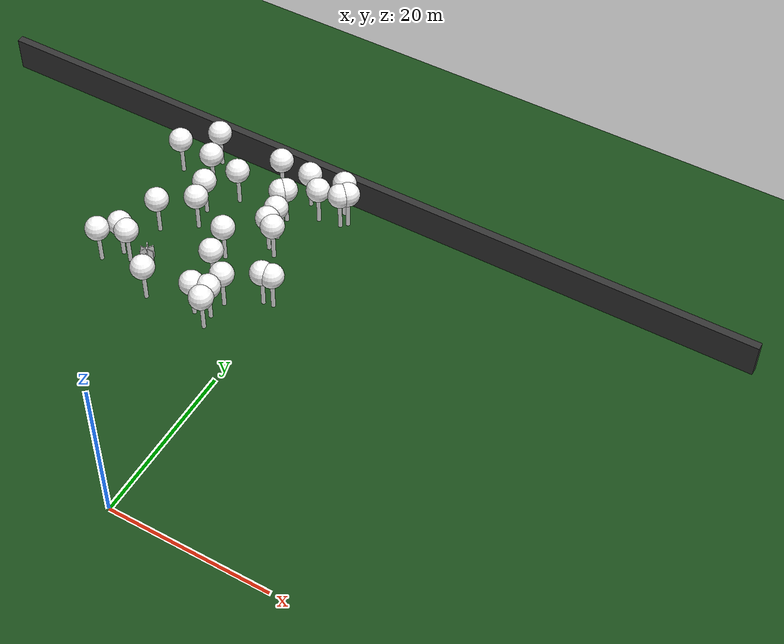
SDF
<sdf version="1.8">
 <world name="forest_world">
  <model name="tree_simple492">
   <static>1</static>
   <link name="link">
    <pose>0 0 0.1 0 -0 0</pose>
    <collision name="collision_trunk">
     <pose>0 0 2 0 -0 0</pose>
     <geometry><cylinder><radius>0.25</radius><length>4</length></cylinder></geometry>
    </collision>
    <collision name="collision_treetop">
     <pose>0 0 5.2 0 -0 0</pose>
     <geometry><sphere><radius>1.5</radius></sphere></geometry>
    </collision>
    <visual name="trunk">
     <pose>0 0 2 0 -0 0</pose>
     <geometry><cylinder><radius>0.25</radius><length>4</length></cylinder></geometry>
     <material>
      <ambient>0.5 0.5 0.5 1</ambient>
      <diffuse>1.0 1.0 1.0 1</diffuse>
      <specular>0.0 0.0 0.0 1</specular>
      <pbr>
       <metal>
        <albedo_map>../worlds/textures/tree_simple_trunk.jpg</albedo_map>
        <metalness>0.0</metalness>
        <roughness>0.8</roughness>
       </metal>
      </pbr>
     </material>
    </visual>
    <visual name="treetop">
     <pose>0 0 5.2 0 -0 0</pose>
     <geometry><sphere><radius>1.5</radius></sphere></geometry>
     <material>
      <ambient>0.5 0.5 0.5 1</ambient>
      <diffuse>1.0 1.0 1.0 1</diffuse>
      <specular>0.0 0.0 0.0 1</specular>
      <pbr>
       <metal>
        <albedo_map>../worlds/textures/tree_simple_treetop.jpg</albedo_map>
        <metalness>0.0</metalness>
        <roughness>0.9</roughness>
       </metal>
      </pbr>
     </material>
    </visual>
   </link>
   <pose>-7.60604313382 27.1336498888 0 0 -0 0</pose>
  </model>
  <model name="tree_simple483">
   <static>1</static>
   <link name="link">
    <pose>0 0 0.1 0 -0 0</pose>
    <collision name="collision_trunk">
     <pose>0 0 2 0 -0 0</pose>
     <geometry><cylinder><radius>0.25</radius><length>4</length></cylinder></geometry>
    </collision>
    <collision name="collision_treetop">
     <pose>0 0 5.2 0 -0 0</pose>
     <geometry><sphere><radius>1.5</radius></sphere></geometry>
    </collision>
    <visual name="trunk">
     <pose>0 0 2 0 -0 0</pose>
     <geometry><cylinder><radius>0.25</radius><length>4</length></cylinder></geometry>
     <material>
      <ambient>0.5 0.5 0.5 1</ambient>
      <diffuse>1.0 1.0 1.0 1</diffuse>
      <specular>0.0 0.0 0.0 1</specular>
      <pbr>
       <metal>
        <albedo_map>../worlds/textures/tree_simple_trunk.jpg</albedo_map>
        <metalness>0.0</metalness>
        <roughness>0.8</roughness>
       </metal>
      </pbr>
     </material>
    </visual>
    <visual name="treetop">
     <pose>0 0 5.2 0 -0 0</pose>
     <geometry><sphere><radius>1.5</radius></sphere></geometry>
     <material>
      <ambient>0.5 0.5 0.5 1</ambient>
      <diffuse>1.0 1.0 1.0 1</diffuse>
      <specular>0.0 0.0 0.0 1</specular>
      <pbr>
       <metal>
        <albedo_map>../worlds/textures/tree_simple_treetop.jpg</albedo_map>
        <metalness>0.0</metalness>
        <roughness>0.9</roughness>
       </metal>
      </pbr>
     </material>
    </visual>
   </link>
   <pose>-6.65162129766 44.7613363002 0 0 -0 0</pose>
  </model>
  <model name="tree_simple477">
   <static>1</static>
   <link name="link">
    <pose>0 0 0.1 0 -0 0</pose>
    <collision name="collision_trunk">
     <pose>0 0 2 0 -0 0</pose>
     <geometry><cylinder><radius>0.25</radius><length>4</length></cylinder></geometry>
    </collision>
    <collision name="collision_treetop">
     <pose>0 0 5.2 0 -0 0</pose>
     <geometry><sphere><radius>1.5</radius></sphere></geometry>
    </collision>
    <visual name="trunk">
     <pose>0 0 2 0 -0 0</pose>
     <geometry><cylinder><radius>0.25</radius><length>4</length></cylinder></geometry>
     <material>
      <ambient>0.5 0.5 0.5 1</ambient>
      <diffuse>1.0 1.0 1.0 1</diffuse>
      <specular>0.0 0.0 0.0 1</specular>
      <pbr>
       <metal>
        <albedo_map>../worlds/textures/tree_simple_trunk.jpg</albedo_map>
        <metalness>0.0</metalness>
        <roughness>0.8</roughness>
       </metal>
      </pbr>
     </material>
    </visual>
    <visual name="treetop">
     <pose>0 0 5.2 0 -0 0</pose>
     <geometry><sphere><radius>1.5</radius></sphere></geometry>
     <material>
      <ambient>0.5 0.5 0.5 1</ambient>
      <diffuse>1.0 1.0 1.0 1</diffuse>
      <specular>0.0 0.0 0.0 1</specular>
      <pbr>
       <metal>
        <albedo_map>../worlds/textures/tree_simple_treetop.jpg</albedo_map>
        <metalness>0.0</metalness>
        <roughness>0.9</roughness>
       </metal>
      </pbr>
     </material>
    </visual>
   </link>
   <pose>-0.22927085135 32.6495918535 0 0 -0 0</pose>
  </model>
  <model name="tree_simple446">
   <static>1</static>
   <link name="link">
    <pose>0 0 0.1 0 -0 0</pose>
    <collision name="collision_trunk">
     <pose>0 0 2 0 -0 0</pose>
     <geometry><cylinder><radius>0.25</radius><length>4</length></cylinder></geometry>
    </collision>
    <collision name="collision_treetop">
     <pose>0 0 5.2 0 -0 0</pose>
     <geometry><sphere><radius>1.5</radius></sphere></geometry>
    </collision>
    <visual name="trunk">
     <pose>0 0 2 0 -0 0</pose>
     <geometry><cylinder><radius>0.25</radius><length>4</length></cylinder></geometry>
     <material>
      <ambient>0.5 0.5 0.5 1</ambient>
      <diffuse>1.0 1.0 1.0 1</diffuse>
      <specular>0.0 0.0 0.0 1</specular>
      <pbr>
       <metal>
        <albedo_map>../worlds/textures/tree_simple_trunk.jpg</albedo_map>
        <metalness>0.0</metalness>
        <roughness>0.8</roughness>
       </metal>
      </pbr>
     </material>
    </visual>
    <visual name="treetop">
     <pose>0 0 5.2 0 -0 0</pose>
     <geometry><sphere><radius>1.5</radius></sphere></geometry>
     <material>
      <ambient>0.5 0.5 0.5 1</ambient>
      <diffuse>1.0 1.0 1.0 1</diffuse>
      <specular>0.0 0.0 0.0 1</specular>
      <pbr>
       <metal>
        <albedo_map>../worlds/textures/tree_simple_treetop.jpg</albedo_map>
        <metalness>0.0</metalness>
        <roughness>0.9</roughness>
       </metal>
      </pbr>
     </material>
    </visual>
   </link>
   <pose>-14.8873591434 38.8088683427 0 0 -0 0</pose>
  </model>
  <model name="tree_simple436">
   <static>1</static>
   <link name="link">
    <pose>0 0 0.1 0 -0 0</pose>
    <collision name="collision_trunk">
     <pose>0 0 2 0 -0 0</pose>
     <geometry><cylinder><radius>0.25</radius><length>4</length></cylinder></geometry>
    </collision>
    <collision name="collision_treetop">
     <pose>0 0 5.2 0 -0 0</pose>
     <geometry><sphere><radius>1.5</radius></sphere></geometry>
    </collision>
    <visual name="trunk">
     <pose>0 0 2 0 -0 0</pose>
     <geometry><cylinder><radius>0.25</radius><length>4</length></cylinder></geometry>
     <material>
      <ambient>0.5 0.5 0.5 1</ambient>
      <diffuse>1.0 1.0 1.0 1</diffuse>
      <specular>0.0 0.0 0.0 1</specular>
      <pbr>
       <metal>
        <albedo_map>../worlds/textures/tree_simple_trunk.jpg</albedo_map>
        <metalness>0.0</metalness>
        <roughness>0.8</roughness>
       </metal>
      </pbr>
     </material>
    </visual>
    <visual name="treetop">
     <pose>0 0 5.2 0 -0 0</pose>
     <geometry><sphere><radius>1.5</radius></sphere></geometry>
     <material>
      <ambient>0.5 0.5 0.5 1</ambient>
      <diffuse>1.0 1.0 1.0 1</diffuse>
      <specular>0.0 0.0 0.0 1</specular>
      <pbr>
       <metal>
        <albedo_map>../worlds/textures/tree_simple_treetop.jpg</albedo_map>
        <metalness>0.0</metalness>
        <roughness>0.9</roughness>
       </metal>
      </pbr>
     </material>
    </visual>
   </link>
   <pose>-12.9773602363 44.9895309953 0 0 -0 0</pose>
  </model>
  <model name="tree_simple425">
   <static>1</static>
   <link name="link">
    <pose>0 0 0.1 0 -0 0</pose>
    <collision name="collision_trunk">
     <pose>0 0 2 0 -0 0</pose>
     <geometry><cylinder><radius>0.25</radius><length>4</length></cylinder></geometry>
    </collision>
    <collision name="collision_treetop">
     <pose>0 0 5.2 0 -0 0</pose>
     <geometry><sphere><radius>1.5</radius></sphere></geometry>
    </collision>
    <visual name="trunk">
     <pose>0 0 2 0 -0 0</pose>
     <geometry><cylinder><radius>0.25</radius><length>4</length></cylinder></geometry>
     <material>
      <ambient>0.5 0.5 0.5 1</ambient>
      <diffuse>1.0 1.0 1.0 1</diffuse>
      <specular>0.0 0.0 0.0 1</specular>
      <pbr>
       <metal>
        <albedo_map>../worlds/textures/tree_simple_trunk.jpg</albedo_map>
        <metalness>0.0</metalness>
        <roughness>0.8</roughness>
       </metal>
      </pbr>
     </material>
    </visual>
    <visual name="treetop">
     <pose>0 0 5.2 0 -0 0</pose>
     <geometry><sphere><radius>1.5</radius></sphere></geometry>
     <material>
      <ambient>0.5 0.5 0.5 1</ambient>
      <diffuse>1.0 1.0 1.0 1</diffuse>
      <specular>0.0 0.0 0.0 1</specular>
      <pbr>
       <metal>
        <albedo_map>../worlds/textures/tree_simple_treetop.jpg</albedo_map>
        <metalness>0.0</metalness>
        <roughness>0.9</roughness>
       </metal>
      </pbr>
     </material>
    </visual>
   </link>
   <pose>-9.294152574 36.1907172759 0 0 -0 0</pose>
  </model>
  <model name="tree_simple398">
   <static>1</static>
   <link name="link">
    <pose>0 0 0.1 0 -0 0</pose>
    <collision name="collision_trunk">
     <pose>0 0 2 0 -0 0</pose>
     <geometry><cylinder><radius>0.25</radius><length>4</length></cylinder></geometry>
    </collision>
    <collision name="collision_treetop">
     <pose>0 0 5.2 0 -0 0</pose>
     <geometry><sphere><radius>1.5</radius></sphere></geometry>
    </collision>
    <visual name="trunk">
     <pose>0 0 2 0 -0 0</pose>
     <geometry><cylinder><radius>0.25</radius><length>4</length></cylinder></geometry>
     <material>
      <ambient>0.5 0.5 0.5 1</ambient>
      <diffuse>1.0 1.0 1.0 1</diffuse>
      <specular>0.0 0.0 0.0 1</specular>
      <pbr>
       <metal>
        <albedo_map>../worlds/textures/tree_simple_trunk.jpg</albedo_map>
        <metalness>0.0</metalness>
        <roughness>0.8</roughness>
       </metal>
      </pbr>
     </material>
    </visual>
    <visual name="treetop">
     <pose>0 0 5.2 0 -0 0</pose>
     <geometry><sphere><radius>1.5</radius></sphere></geometry>
     <material>
      <ambient>0.5 0.5 0.5 1</ambient>
      <diffuse>1.0 1.0 1.0 1</diffuse>
      <specular>0.0 0.0 0.0 1</specular>
      <pbr>
       <metal>
        <albedo_map>../worlds/textures/tree_simple_treetop.jpg</albedo_map>
        <metalness>0.0</metalness>
        <roughness>0.9</roughness>
       </metal>
      </pbr>
     </material>
    </visual>
   </link>
   <pose>-5.63129043723 27.5985943182 0 0 -0 0</pose>
  </model>
  <model name="tree_simple359">
   <static>1</static>
   <link name="link">
    <pose>0 0 0.1 0 -0 0</pose>
    <collision name="collision_trunk">
     <pose>0 0 2 0 -0 0</pose>
     <geometry><cylinder><radius>0.25</radius><length>4</length></cylinder></geometry>
    </collision>
    <collision name="collision_treetop">
     <pose>0 0 5.2 0 -0 0</pose>
     <geometry><sphere><radius>1.5</radius></sphere></geometry>
    </collision>
    <visual name="trunk">
     <pose>0 0 2 0 -0 0</pose>
     <geometry><cylinder><radius>0.25</radius><length>4</length></cylinder></geometry>
     <material>
      <ambient>0.5 0.5 0.5 1</ambient>
      <diffuse>1.0 1.0 1.0 1</diffuse>
      <specular>0.0 0.0 0.0 1</specular>
      <pbr>
       <metal>
        <albedo_map>../worlds/textures/tree_simple_trunk.jpg</albedo_map>
        <metalness>0.0</metalness>
        <roughness>0.8</roughness>
       </metal>
      </pbr>
     </material>
    </visual>
    <visual name="treetop">
     <pose>0 0 5.2 0 -0 0</pose>
     <geometry><sphere><radius>1.5</radius></sphere></geometry>
     <material>
      <ambient>0.5 0.5 0.5 1</ambient>
      <diffuse>1.0 1.0 1.0 1</diffuse>
      <specular>0.0 0.0 0.0 1</specular>
      <pbr>
       <metal>
        <albedo_map>../worlds/textures/tree_simple_treetop.jpg</albedo_map>
        <metalness>0.0</metalness>
        <roughness>0.9</roughness>
       </metal>
      </pbr>
     </material>
    </visual>
   </link>
   <pose>-20.2372130322 30.6626507403 0 0 -0 0</pose>
  </model>
  <model name="tree_simple356">
   <static>1</static>
   <link name="link">
    <pose>0 0 0.1 0 -0 0</pose>
    <collision name="collision_trunk">
     <pose>0 0 2 0 -0 0</pose>
     <geometry><cylinder><radius>0.25</radius><length>4</length></cylinder></geometry>
    </collision>
    <collision name="collision_treetop">
     <pose>0 0 5.2 0 -0 0</pose>
     <geometry><sphere><radius>1.5</radius></sphere></geometry>
    </collision>
    <visual name="trunk">
     <pose>0 0 2 0 -0 0</pose>
     <geometry><cylinder><radius>0.25</radius><length>4</length></cylinder></geometry>
     <material>
      <ambient>0.5 0.5 0.5 1</ambient>
      <diffuse>1.0 1.0 1.0 1</diffuse>
      <specular>0.0 0.0 0.0 1</specular>
      <pbr>
       <metal>
        <albedo_map>../worlds/textures/tree_simple_trunk.jpg</albedo_map>
        <metalness>0.0</metalness>
        <roughness>0.8</roughness>
       </metal>
      </pbr>
     </material>
    </visual>
    <visual name="treetop">
     <pose>0 0 5.2 0 -0 0</pose>
     <geometry><sphere><radius>1.5</radius></sphere></geometry>
     <material>
      <ambient>0.5 0.5 0.5 1</ambient>
      <diffuse>1.0 1.0 1.0 1</diffuse>
      <specular>0.0 0.0 0.0 1</specular>
      <pbr>
       <metal>
        <albedo_map>../worlds/textures/tree_simple_treetop.jpg</albedo_map>
        <metalness>0.0</metalness>
        <roughness>0.9</roughness>
       </metal>
      </pbr>
     </material>
    </visual>
   </link>
   <pose>-2.83030100633 47.164879459 0 0 -0 0</pose>
  </model>
  <model name="tree_simple353">
   <static>1</static>
   <link name="link">
    <pose>0 0 0.1 0 -0 0</pose>
    <collision name="collision_trunk">
     <pose>0 0 2 0 -0 0</pose>
     <geometry><cylinder><radius>0.25</radius><length>4</length></cylinder></geometry>
    </collision>
    <collision name="collision_treetop">
     <pose>0 0 5.2 0 -0 0</pose>
     <geometry><sphere><radius>1.5</radius></sphere></geometry>
    </collision>
    <visual name="trunk">
     <pose>0 0 2 0 -0 0</pose>
     <geometry><cylinder><radius>0.25</radius><length>4</length></cylinder></geometry>
     <material>
      <ambient>0.5 0.5 0.5 1</ambient>
      <diffuse>1.0 1.0 1.0 1</diffuse>
      <specular>0.0 0.0 0.0 1</specular>
      <pbr>
       <metal>
        <albedo_map>../worlds/textures/tree_simple_trunk.jpg</albedo_map>
        <metalness>0.0</metalness>
        <roughness>0.8</roughness>
       </metal>
      </pbr>
     </material>
    </visual>
    <visual name="treetop">
     <pose>0 0 5.2 0 -0 0</pose>
     <geometry><sphere><radius>1.5</radius></sphere></geometry>
     <material>
      <ambient>0.5 0.5 0.5 1</ambient>
      <diffuse>1.0 1.0 1.0 1</diffuse>
      <specular>0.0 0.0 0.0 1</specular>
      <pbr>
       <metal>
        <albedo_map>../worlds/textures/tree_simple_treetop.jpg</albedo_map>
        <metalness>0.0</metalness>
        <roughness>0.9</roughness>
       </metal>
      </pbr>
     </material>
    </visual>
   </link>
   <pose>-8.45318639894 32.4449291469 0 0 -0 0</pose>
  </model>
  <model name="tree_simple343">
   <static>1</static>
   <link name="link">
    <pose>0 0 0.1 0 -0 0</pose>
    <collision name="collision_trunk">
     <pose>0 0 2 0 -0 0</pose>
     <geometry><cylinder><radius>0.25</radius><length>4</length></cylinder></geometry>
    </collision>
    <collision name="collision_treetop">
     <pose>0 0 5.2 0 -0 0</pose>
     <geometry><sphere><radius>1.5</radius></sphere></geometry>
    </collision>
    <visual name="trunk">
     <pose>0 0 2 0 -0 0</pose>
     <geometry><cylinder><radius>0.25</radius><length>4</length></cylinder></geometry>
     <material>
      <ambient>0.5 0.5 0.5 1</ambient>
      <diffuse>1.0 1.0 1.0 1</diffuse>
      <specular>0.0 0.0 0.0 1</specular>
      <pbr>
       <metal>
        <albedo_map>../worlds/textures/tree_simple_trunk.jpg</albedo_map>
        <metalness>0.0</metalness>
        <roughness>0.8</roughness>
       </metal>
      </pbr>
     </material>
    </visual>
    <visual name="treetop">
     <pose>0 0 5.2 0 -0 0</pose>
     <geometry><sphere><radius>1.5</radius></sphere></geometry>
     <material>
      <ambient>0.5 0.5 0.5 1</ambient>
      <diffuse>1.0 1.0 1.0 1</diffuse>
      <specular>0.0 0.0 0.0 1</specular>
      <pbr>
       <metal>
        <albedo_map>../worlds/textures/tree_simple_treetop.jpg</albedo_map>
        <metalness>0.0</metalness>
        <roughness>0.9</roughness>
       </metal>
      </pbr>
     </material>
    </visual>
   </link>
   <pose>-17.2958932822 45.7138384605 0 0 -0 0</pose>
  </model>
  <model name="tree_simple342">
   <static>1</static>
   <link name="link">
    <pose>0 0 0.1 0 -0 0</pose>
    <collision name="collision_trunk">
     <pose>0 0 2 0 -0 0</pose>
     <geometry><cylinder><radius>0.25</radius><length>4</length></cylinder></geometry>
    </collision>
    <collision name="collision_treetop">
     <pose>0 0 5.2 0 -0 0</pose>
     <geometry><sphere><radius>1.5</radius></sphere></geometry>
    </collision>
    <visual name="trunk">
     <pose>0 0 2 0 -0 0</pose>
     <geometry><cylinder><radius>0.25</radius><length>4</length></cylinder></geometry>
     <material>
      <ambient>0.5 0.5 0.5 1</ambient>
      <diffuse>1.0 1.0 1.0 1</diffuse>
      <specular>0.0 0.0 0.0 1</specular>
      <pbr>
       <metal>
        <albedo_map>../worlds/textures/tree_simple_trunk.jpg</albedo_map>
        <metalness>0.0</metalness>
        <roughness>0.8</roughness>
       </metal>
      </pbr>
     </material>
    </visual>
    <visual name="treetop">
     <pose>0 0 5.2 0 -0 0</pose>
     <geometry><sphere><radius>1.5</radius></sphere></geometry>
     <material>
      <ambient>0.5 0.5 0.5 1</ambient>
      <diffuse>1.0 1.0 1.0 1</diffuse>
      <specular>0.0 0.0 0.0 1</specular>
      <pbr>
       <metal>
        <albedo_map>../worlds/textures/tree_simple_treetop.jpg</albedo_map>
        <metalness>0.0</metalness>
        <roughness>0.9</roughness>
       </metal>
      </pbr>
     </material>
    </visual>
   </link>
   <pose>-22.0369501139 46.0033918911 0 0 -0 0</pose>
  </model>
  <model name="tree_simple302">
   <static>1</static>
   <link name="link">
    <pose>0 0 0.1 0 -0 0</pose>
    <collision name="collision_trunk">
     <pose>0 0 2 0 -0 0</pose>
     <geometry><cylinder><radius>0.25</radius><length>4</length></cylinder></geometry>
    </collision>
    <collision name="collision_treetop">
     <pose>0 0 5.2 0 -0 0</pose>
     <geometry><sphere><radius>1.5</radius></sphere></geometry>
    </collision>
    <visual name="trunk">
     <pose>0 0 2 0 -0 0</pose>
     <geometry><cylinder><radius>0.25</radius><length>4</length></cylinder></geometry>
     <material>
      <ambient>0.5 0.5 0.5 1</ambient>
      <diffuse>1.0 1.0 1.0 1</diffuse>
      <specular>0.0 0.0 0.0 1</specular>
      <pbr>
       <metal>
        <albedo_map>../worlds/textures/tree_simple_trunk.jpg</albedo_map>
        <metalness>0.0</metalness>
        <roughness>0.8</roughness>
       </metal>
      </pbr>
     </material>
    </visual>
    <visual name="treetop">
     <pose>0 0 5.2 0 -0 0</pose>
     <geometry><sphere><radius>1.5</radius></sphere></geometry>
     <material>
      <ambient>0.5 0.5 0.5 1</ambient>
      <diffuse>1.0 1.0 1.0 1</diffuse>
      <specular>0.0 0.0 0.0 1</specular>
      <pbr>
       <metal>
        <albedo_map>../worlds/textures/tree_simple_treetop.jpg</albedo_map>
        <metalness>0.0</metalness>
        <roughness>0.9</roughness>
       </metal>
      </pbr>
     </material>
    </visual>
   </link>
   <pose>-4.36833306423 39.3035065939 0 0 -0 0</pose>
  </model>
  <model name="tree_simple299">
   <static>1</static>
   <link name="link">
    <pose>0 0 0.1 0 -0 0</pose>
    <collision name="collision_trunk">
     <pose>0 0 2 0 -0 0</pose>
     <geometry><cylinder><radius>0.25</radius><length>4</length></cylinder></geometry>
    </collision>
    <collision name="collision_treetop">
     <pose>0 0 5.2 0 -0 0</pose>
     <geometry><sphere><radius>1.5</radius></sphere></geometry>
    </collision>
    <visual name="trunk">
     <pose>0 0 2 0 -0 0</pose>
     <geometry><cylinder><radius>0.25</radius><length>4</length></cylinder></geometry>
     <material>
      <ambient>0.5 0.5 0.5 1</ambient>
      <diffuse>1.0 1.0 1.0 1</diffuse>
      <specular>0.0 0.0 0.0 1</specular>
      <pbr>
       <metal>
        <albedo_map>../worlds/textures/tree_simple_trunk.jpg</albedo_map>
        <metalness>0.0</metalness>
        <roughness>0.8</roughness>
       </metal>
      </pbr>
     </material>
    </visual>
    <visual name="treetop">
     <pose>0 0 5.2 0 -0 0</pose>
     <geometry><sphere><radius>1.5</radius></sphere></geometry>
     <material>
      <ambient>0.5 0.5 0.5 1</ambient>
      <diffuse>1.0 1.0 1.0 1</diffuse>
      <specular>0.0 0.0 0.0 1</specular>
      <pbr>
       <metal>
        <albedo_map>../worlds/textures/tree_simple_treetop.jpg</albedo_map>
        <metalness>0.0</metalness>
        <roughness>0.9</roughness>
       </metal>
      </pbr>
     </material>
    </visual>
   </link>
   <pose>-1.46806320409 32.459422197 0 0 -0 0</pose>
  </model>
  <model name="tree_simple273">
   <static>1</static>
   <link name="link">
    <pose>0 0 0.1 0 -0 0</pose>
    <collision name="collision_trunk">
     <pose>0 0 2 0 -0 0</pose>
     <geometry><cylinder><radius>0.25</radius><length>4</length></cylinder></geometry>
    </collision>
    <collision name="collision_treetop">
     <pose>0 0 5.2 0 -0 0</pose>
     <geometry><sphere><radius>1.5</radius></sphere></geometry>
    </collision>
    <visual name="trunk">
     <pose>0 0 2 0 -0 0</pose>
     <geometry><cylinder><radius>0.25</radius><length>4</length></cylinder></geometry>
     <material>
      <ambient>0.5 0.5 0.5 1</ambient>
      <diffuse>1.0 1.0 1.0 1</diffuse>
      <specular>0.0 0.0 0.0 1</specular>
      <pbr>
       <metal>
        <albedo_map>../worlds/textures/tree_simple_trunk.jpg</albedo_map>
        <metalness>0.0</metalness>
        <roughness>0.8</roughness>
       </metal>
      </pbr>
     </material>
    </visual>
    <visual name="treetop">
     <pose>0 0 5.2 0 -0 0</pose>
     <geometry><sphere><radius>1.5</radius></sphere></geometry>
     <material>
      <ambient>0.5 0.5 0.5 1</ambient>
      <diffuse>1.0 1.0 1.0 1</diffuse>
      <specular>0.0 0.0 0.0 1</specular>
      <pbr>
       <metal>
        <albedo_map>../worlds/textures/tree_simple_treetop.jpg</albedo_map>
        <metalness>0.0</metalness>
        <roughness>0.9</roughness>
       </metal>
      </pbr>
     </material>
    </visual>
   </link>
   <pose>0.615452914857 48.3188405116 0 0 -0 0</pose>
  </model>
  <model name="tree_simple271">
   <static>1</static>
   <link name="link">
    <pose>0 0 0.1 0 -0 0</pose>
    <collision name="collision_trunk">
     <pose>0 0 2 0 -0 0</pose>
     <geometry><cylinder><radius>0.25</radius><length>4</length></cylinder></geometry>
    </collision>
    <collision name="collision_treetop">
     <pose>0 0 5.2 0 -0 0</pose>
     <geometry><sphere><radius>1.5</radius></sphere></geometry>
    </collision>
    <visual name="trunk">
     <pose>0 0 2 0 -0 0</pose>
     <geometry><cylinder><radius>0.25</radius><length>4</length></cylinder></geometry>
     <material>
      <ambient>0.5 0.5 0.5 1</ambient>
      <diffuse>1.0 1.0 1.0 1</diffuse>
      <specular>0.0 0.0 0.0 1</specular>
      <pbr>
       <metal>
        <albedo_map>../worlds/textures/tree_simple_trunk.jpg</albedo_map>
        <metalness>0.0</metalness>
        <roughness>0.8</roughness>
       </metal>
      </pbr>
     </material>
    </visual>
    <visual name="treetop">
     <pose>0 0 5.2 0 -0 0</pose>
     <geometry><sphere><radius>1.5</radius></sphere></geometry>
     <material>
      <ambient>0.5 0.5 0.5 1</ambient>
      <diffuse>1.0 1.0 1.0 1</diffuse>
      <specular>0.0 0.0 0.0 1</specular>
      <pbr>
       <metal>
        <albedo_map>../worlds/textures/tree_simple_treetop.jpg</albedo_map>
        <metalness>0.0</metalness>
        <roughness>0.9</roughness>
       </metal>
      </pbr>
     </material>
    </visual>
   </link>
   <pose>-18.5426783436 49.4999190652 0 0 -0 0</pose>
  </model>
  <model name="tree_simple248">
   <static>1</static>
   <link name="link">
    <pose>0 0 0.1 0 -0 0</pose>
    <collision name="collision_trunk">
     <pose>0 0 2 0 -0 0</pose>
     <geometry><cylinder><radius>0.25</radius><length>4</length></cylinder></geometry>
    </collision>
    <collision name="collision_treetop">
     <pose>0 0 5.2 0 -0 0</pose>
     <geometry><sphere><radius>1.5</radius></sphere></geometry>
    </collision>
    <visual name="trunk">
     <pose>0 0 2 0 -0 0</pose>
     <geometry><cylinder><radius>0.25</radius><length>4</length></cylinder></geometry>
     <material>
      <ambient>0.5 0.5 0.5 1</ambient>
      <diffuse>1.0 1.0 1.0 1</diffuse>
      <specular>0.0 0.0 0.0 1</specular>
      <pbr>
       <metal>
        <albedo_map>../worlds/textures/tree_simple_trunk.jpg</albedo_map>
        <metalness>0.0</metalness>
        <roughness>0.8</roughness>
       </metal>
      </pbr>
     </material>
    </visual>
    <visual name="treetop">
     <pose>0 0 5.2 0 -0 0</pose>
     <geometry><sphere><radius>1.5</radius></sphere></geometry>
     <material>
      <ambient>0.5 0.5 0.5 1</ambient>
      <diffuse>1.0 1.0 1.0 1</diffuse>
      <specular>0.0 0.0 0.0 1</specular>
      <pbr>
       <metal>
        <albedo_map>../worlds/textures/tree_simple_treetop.jpg</albedo_map>
        <metalness>0.0</metalness>
        <roughness>0.9</roughness>
       </metal>
      </pbr>
     </material>
    </visual>
   </link>
   <pose>-9.31615496508 49.2286778513 0 0 -0 0</pose>
  </model>
  <model name="tree_simple213">
   <static>1</static>
   <link name="link">
    <pose>0 0 0.1 0 -0 0</pose>
    <collision name="collision_trunk">
     <pose>0 0 2 0 -0 0</pose>
     <geometry><cylinder><radius>0.25</radius><length>4</length></cylinder></geometry>
    </collision>
    <collision name="collision_treetop">
     <pose>0 0 5.2 0 -0 0</pose>
     <geometry><sphere><radius>1.5</radius></sphere></geometry>
    </collision>
    <visual name="trunk">
     <pose>0 0 2 0 -0 0</pose>
     <geometry><cylinder><radius>0.25</radius><length>4</length></cylinder></geometry>
     <material>
      <ambient>0.5 0.5 0.5 1</ambient>
      <diffuse>1.0 1.0 1.0 1</diffuse>
      <specular>0.0 0.0 0.0 1</specular>
      <pbr>
       <metal>
        <albedo_map>../worlds/textures/tree_simple_trunk.jpg</albedo_map>
        <metalness>0.0</metalness>
        <roughness>0.8</roughness>
       </metal>
      </pbr>
     </material>
    </visual>
    <visual name="treetop">
     <pose>0 0 5.2 0 -0 0</pose>
     <geometry><sphere><radius>1.5</radius></sphere></geometry>
     <material>
      <ambient>0.5 0.5 0.5 1</ambient>
      <diffuse>1.0 1.0 1.0 1</diffuse>
      <specular>0.0 0.0 0.0 1</specular>
      <pbr>
       <metal>
        <albedo_map>../worlds/textures/tree_simple_treetop.jpg</albedo_map>
        <metalness>0.0</metalness>
        <roughness>0.9</roughness>
       </metal>
      </pbr>
     </material>
    </visual>
   </link>
   <pose>-6.21217405129 45.1783482454 0 0 -0 0</pose>
  </model>
  <model name="tree_simple184">
   <static>1</static>
   <link name="link">
    <pose>0 0 0.1 0 -0 0</pose>
    <collision name="collision_trunk">
     <pose>0 0 2 0 -0 0</pose>
     <geometry><cylinder><radius>0.25</radius><length>4</length></cylinder></geometry>
    </collision>
    <collision name="collision_treetop">
     <pose>0 0 5.2 0 -0 0</pose>
     <geometry><sphere><radius>1.5</radius></sphere></geometry>
    </collision>
    <visual name="trunk">
     <pose>0 0 2 0 -0 0</pose>
     <geometry><cylinder><radius>0.25</radius><length>4</length></cylinder></geometry>
     <material>
      <ambient>0.5 0.5 0.5 1</ambient>
      <diffuse>1.0 1.0 1.0 1</diffuse>
      <specular>0.0 0.0 0.0 1</specular>
      <pbr>
       <metal>
        <albedo_map>../worlds/textures/tree_simple_trunk.jpg</albedo_map>
        <metalness>0.0</metalness>
        <roughness>0.8</roughness>
       </metal>
      </pbr>
     </material>
    </visual>
    <visual name="treetop">
     <pose>0 0 5.2 0 -0 0</pose>
     <geometry><sphere><radius>1.5</radius></sphere></geometry>
     <material>
      <ambient>0.5 0.5 0.5 1</ambient>
      <diffuse>1.0 1.0 1.0 1</diffuse>
      <specular>0.0 0.0 0.0 1</specular>
      <pbr>
       <metal>
        <albedo_map>../worlds/textures/tree_simple_treetop.jpg</albedo_map>
        <metalness>0.0</metalness>
        <roughness>0.9</roughness>
       </metal>
      </pbr>
     </material>
    </visual>
   </link>
   <pose>-0.656302905273 49.6633789535 0 0 -0 0</pose>
  </model>
  <model name="tree_simple161">
   <static>1</static>
   <link name="link">
    <pose>0 0 0.1 0 -0 0</pose>
    <collision name="collision_trunk">
     <pose>0 0 2 0 -0 0</pose>
     <geometry><cylinder><radius>0.25</radius><length>4</length></cylinder></geometry>
    </collision>
    <collision name="collision_treetop">
     <pose>0 0 5.2 0 -0 0</pose>
     <geometry><sphere><radius>1.5</radius></sphere></geometry>
    </collision>
    <visual name="trunk">
     <pose>0 0 2 0 -0 0</pose>
     <geometry><cylinder><radius>0.25</radius><length>4</length></cylinder></geometry>
     <material>
      <ambient>0.5 0.5 0.5 1</ambient>
      <diffuse>1.0 1.0 1.0 1</diffuse>
      <specular>0.0 0.0 0.0 1</specular>
      <pbr>
       <metal>
        <albedo_map>../worlds/textures/tree_simple_trunk.jpg</albedo_map>
        <metalness>0.0</metalness>
        <roughness>0.8</roughness>
       </metal>
      </pbr>
     </material>
    </visual>
    <visual name="treetop">
     <pose>0 0 5.2 0 -0 0</pose>
     <geometry><sphere><radius>1.5</radius></sphere></geometry>
     <material>
      <ambient>0.5 0.5 0.5 1</ambient>
      <diffuse>1.0 1.0 1.0 1</diffuse>
      <specular>0.0 0.0 0.0 1</specular>
      <pbr>
       <metal>
        <albedo_map>../worlds/textures/tree_simple_treetop.jpg</albedo_map>
        <metalness>0.0</metalness>
        <roughness>0.9</roughness>
       </metal>
      </pbr>
     </material>
    </visual>
   </link>
   <pose>-5.06082538739 48.9463602033 0 0 -0 0</pose>
  </model>
  <model name="tree_simple134">
   <static>1</static>
   <link name="link">
    <pose>0 0 0.1 0 -0 0</pose>
    <collision name="collision_trunk">
     <pose>0 0 2 0 -0 0</pose>
     <geometry><cylinder><radius>0.25</radius><length>4</length></cylinder></geometry>
    </collision>
    <collision name="collision_treetop">
     <pose>0 0 5.2 0 -0 0</pose>
     <geometry><sphere><radius>1.5</radius></sphere></geometry>
    </collision>
    <visual name="trunk">
     <pose>0 0 2 0 -0 0</pose>
     <geometry><cylinder><radius>0.25</radius><length>4</length></cylinder></geometry>
     <material>
      <ambient>0.5 0.5 0.5 1</ambient>
      <diffuse>1.0 1.0 1.0 1</diffuse>
      <specular>0.0 0.0 0.0 1</specular>
      <pbr>
       <metal>
        <albedo_map>../worlds/textures/tree_simple_trunk.jpg</albedo_map>
        <metalness>0.0</metalness>
        <roughness>0.8</roughness>
       </metal>
      </pbr>
     </material>
    </visual>
    <visual name="treetop">
     <pose>0 0 5.2 0 -0 0</pose>
     <geometry><sphere><radius>1.5</radius></sphere></geometry>
     <material>
      <ambient>0.5 0.5 0.5 1</ambient>
      <diffuse>1.0 1.0 1.0 1</diffuse>
      <specular>0.0 0.0 0.0 1</specular>
      <pbr>
       <metal>
        <albedo_map>../worlds/textures/tree_simple_treetop.jpg</albedo_map>
        <metalness>0.0</metalness>
        <roughness>0.9</roughness>
       </metal>
      </pbr>
     </material>
    </visual>
   </link>
   <pose>-15.5112177362 41.52540577 0 0 -0 0</pose>
  </model>
  <model name="tree_simple116">
   <static>1</static>
   <link name="link">
    <pose>0 0 0.1 0 -0 0</pose>
    <collision name="collision_trunk">
     <pose>0 0 2 0 -0 0</pose>
     <geometry><cylinder><radius>0.25</radius><length>4</length></cylinder></geometry>
    </collision>
    <collision name="collision_treetop">
     <pose>0 0 5.2 0 -0 0</pose>
     <geometry><sphere><radius>1.5</radius></sphere></geometry>
    </collision>
    <visual name="trunk">
     <pose>0 0 2 0 -0 0</pose>
     <geometry><cylinder><radius>0.25</radius><length>4</length></cylinder></geometry>
     <material>
      <ambient>0.5 0.5 0.5 1</ambient>
      <diffuse>1.0 1.0 1.0 1</diffuse>
      <specular>0.0 0.0 0.0 1</specular>
      <pbr>
       <metal>
        <albedo_map>../worlds/textures/tree_simple_trunk.jpg</albedo_map>
        <metalness>0.0</metalness>
        <roughness>0.8</roughness>
       </metal>
      </pbr>
     </material>
    </visual>
    <visual name="treetop">
     <pose>0 0 5.2 0 -0 0</pose>
     <geometry><sphere><radius>1.5</radius></sphere></geometry>
     <material>
      <ambient>0.5 0.5 0.5 1</ambient>
      <diffuse>1.0 1.0 1.0 1</diffuse>
      <specular>0.0 0.0 0.0 1</specular>
      <pbr>
       <metal>
        <albedo_map>../worlds/textures/tree_simple_treetop.jpg</albedo_map>
        <metalness>0.0</metalness>
        <roughness>0.9</roughness>
       </metal>
      </pbr>
     </material>
    </visual>
   </link>
   <pose>-18.6791358841 36.0330135093 0 0 -0 0</pose>
  </model>
  <model name="tree_simple110">
   <static>1</static>
   <link name="link">
    <pose>0 0 0.1 0 -0 0</pose>
    <collision name="collision_trunk">
     <pose>0 0 2 0 -0 0</pose>
     <geometry><cylinder><radius>0.25</radius><length>4</length></cylinder></geometry>
    </collision>
    <collision name="collision_treetop">
     <pose>0 0 5.2 0 -0 0</pose>
     <geometry><sphere><radius>1.5</radius></sphere></geometry>
    </collision>
    <visual name="trunk">
     <pose>0 0 2 0 -0 0</pose>
     <geometry><cylinder><radius>0.25</radius><length>4</length></cylinder></geometry>
     <material>
      <ambient>0.5 0.5 0.5 1</ambient>
      <diffuse>1.0 1.0 1.0 1</diffuse>
      <specular>0.0 0.0 0.0 1</specular>
      <pbr>
       <metal>
        <albedo_map>../worlds/textures/tree_simple_trunk.jpg</albedo_map>
        <metalness>0.0</metalness>
        <roughness>0.8</roughness>
       </metal>
      </pbr>
     </material>
    </visual>
    <visual name="treetop">
     <pose>0 0 5.2 0 -0 0</pose>
     <geometry><sphere><radius>1.5</radius></sphere></geometry>
     <material>
      <ambient>0.5 0.5 0.5 1</ambient>
      <diffuse>1.0 1.0 1.0 1</diffuse>
      <specular>0.0 0.0 0.0 1</specular>
      <pbr>
       <metal>
        <albedo_map>../worlds/textures/tree_simple_treetop.jpg</albedo_map>
        <metalness>0.0</metalness>
        <roughness>0.9</roughness>
       </metal>
      </pbr>
     </material>
    </visual>
   </link>
   <pose>-5.41034027226 25.8326134986 0 0 -0 0</pose>
  </model>
  <model name="tree_simple104">
   <static>1</static>
   <link name="link">
    <pose>0 0 0.1 0 -0 0</pose>
    <collision name="collision_trunk">
     <pose>0 0 2 0 -0 0</pose>
     <geometry><cylinder><radius>0.25</radius><length>4</length></cylinder></geometry>
    </collision>
    <collision name="collision_treetop">
     <pose>0 0 5.2 0 -0 0</pose>
     <geometry><sphere><radius>1.5</radius></sphere></geometry>
    </collision>
    <visual name="trunk">
     <pose>0 0 2 0 -0 0</pose>
     <geometry><cylinder><radius>0.25</radius><length>4</length></cylinder></geometry>
     <material>
      <ambient>0.5 0.5 0.5 1</ambient>
      <diffuse>1.0 1.0 1.0 1</diffuse>
      <specular>0.0 0.0 0.0 1</specular>
      <pbr>
       <metal>
        <albedo_map>../worlds/textures/tree_simple_trunk.jpg</albedo_map>
        <metalness>0.0</metalness>
        <roughness>0.8</roughness>
       </metal>
      </pbr>
     </material>
    </visual>
    <visual name="treetop">
     <pose>0 0 5.2 0 -0 0</pose>
     <geometry><sphere><radius>1.5</radius></sphere></geometry>
     <material>
      <ambient>0.5 0.5 0.5 1</ambient>
      <diffuse>1.0 1.0 1.0 1</diffuse>
      <specular>0.0 0.0 0.0 1</specular>
      <pbr>
       <metal>
        <albedo_map>../worlds/textures/tree_simple_treetop.jpg</albedo_map>
        <metalness>0.0</metalness>
        <roughness>0.9</roughness>
       </metal>
      </pbr>
     </material>
    </visual>
   </link>
   <pose>-21.9670509501 28.5770993943 0 0 -0 0</pose>
  </model>
  <model name="tree_simple92">
   <static>1</static>
   <link name="link">
    <pose>0 0 0.1 0 -0 0</pose>
    <collision name="collision_trunk">
     <pose>0 0 2 0 -0 0</pose>
     <geometry><cylinder><radius>0.25</radius><length>4</length></cylinder></geometry>
    </collision>
    <collision name="collision_treetop">
     <pose>0 0 5.2 0 -0 0</pose>
     <geometry><sphere><radius>1.5</radius></sphere></geometry>
    </collision>
    <visual name="trunk">
     <pose>0 0 2 0 -0 0</pose>
     <geometry><cylinder><radius>0.25</radius><length>4</length></cylinder></geometry>
     <material>
      <ambient>0.5 0.5 0.5 1</ambient>
      <diffuse>1.0 1.0 1.0 1</diffuse>
      <specular>0.0 0.0 0.0 1</specular>
      <pbr>
       <metal>
        <albedo_map>../worlds/textures/tree_simple_trunk.jpg</albedo_map>
        <metalness>0.0</metalness>
        <roughness>0.8</roughness>
       </metal>
      </pbr>
     </material>
    </visual>
    <visual name="treetop">
     <pose>0 0 5.2 0 -0 0</pose>
     <geometry><sphere><radius>1.5</radius></sphere></geometry>
     <material>
      <ambient>0.5 0.5 0.5 1</ambient>
      <diffuse>1.0 1.0 1.0 1</diffuse>
      <specular>0.0 0.0 0.0 1</specular>
      <pbr>
       <metal>
        <albedo_map>../worlds/textures/tree_simple_treetop.jpg</albedo_map>
        <metalness>0.0</metalness>
        <roughness>0.9</roughness>
       </metal>
      </pbr>
     </material>
    </visual>
   </link>
   <pose>-5.60936243571 42.0879357929 0 0 -0 0</pose>
  </model>
  <model name="tree_simple59">
   <static>1</static>
   <link name="link">
    <pose>0 0 0.1 0 -0 0</pose>
    <collision name="collision_trunk">
     <pose>0 0 2 0 -0 0</pose>
     <geometry><cylinder><radius>0.25</radius><length>4</length></cylinder></geometry>
    </collision>
    <collision name="collision_treetop">
     <pose>0 0 5.2 0 -0 0</pose>
     <geometry><sphere><radius>1.5</radius></sphere></geometry>
    </collision>
    <visual name="trunk">
     <pose>0 0 2 0 -0 0</pose>
     <geometry><cylinder><radius>0.25</radius><length>4</length></cylinder></geometry>
     <material>
      <ambient>0.5 0.5 0.5 1</ambient>
      <diffuse>1.0 1.0 1.0 1</diffuse>
      <specular>0.0 0.0 0.0 1</specular>
      <pbr>
       <metal>
        <albedo_map>../worlds/textures/tree_simple_trunk.jpg</albedo_map>
        <metalness>0.0</metalness>
        <roughness>0.8</roughness>
       </metal>
      </pbr>
     </material>
    </visual>
    <visual name="treetop">
     <pose>0 0 5.2 0 -0 0</pose>
     <geometry><sphere><radius>1.5</radius></sphere></geometry>
     <material>
      <ambient>0.5 0.5 0.5 1</ambient>
      <diffuse>1.0 1.0 1.0 1</diffuse>
      <specular>0.0 0.0 0.0 1</specular>
      <pbr>
       <metal>
        <albedo_map>../worlds/textures/tree_simple_treetop.jpg</albedo_map>
        <metalness>0.0</metalness>
        <roughness>0.9</roughness>
       </metal>
      </pbr>
     </material>
    </visual>
   </link>
   <pose>-5.58238375985 40.1230579817 0 0 -0 0</pose>
  </model>
  <model name="tree_simple55">
   <static>1</static>
   <link name="link">
    <pose>0 0 0.1 0 -0 0</pose>
    <collision name="collision_trunk">
     <pose>0 0 2 0 -0 0</pose>
     <geometry><cylinder><radius>0.25</radius><length>4</length></cylinder></geometry>
    </collision>
    <collision name="collision_treetop">
     <pose>0 0 5.2 0 -0 0</pose>
     <geometry><sphere><radius>1.5</radius></sphere></geometry>
    </collision>
    <visual name="trunk">
     <pose>0 0 2 0 -0 0</pose>
     <geometry><cylinder><radius>0.25</radius><length>4</length></cylinder></geometry>
     <material>
      <ambient>0.5 0.5 0.5 1</ambient>
      <diffuse>1.0 1.0 1.0 1</diffuse>
      <specular>0.0 0.0 0.0 1</specular>
      <pbr>
       <metal>
        <albedo_map>../worlds/textures/tree_simple_trunk.jpg</albedo_map>
        <metalness>0.0</metalness>
        <roughness>0.8</roughness>
       </metal>
      </pbr>
     </material>
    </visual>
    <visual name="treetop">
     <pose>0 0 5.2 0 -0 0</pose>
     <geometry><sphere><radius>1.5</radius></sphere></geometry>
     <material>
      <ambient>0.5 0.5 0.5 1</ambient>
      <diffuse>1.0 1.0 1.0 1</diffuse>
      <specular>0.0 0.0 0.0 1</specular>
      <pbr>
       <metal>
        <albedo_map>../worlds/textures/tree_simple_treetop.jpg</albedo_map>
        <metalness>0.0</metalness>
        <roughness>0.9</roughness>
       </metal>
      </pbr>
     </material>
    </visual>
   </link>
   <pose>-18.841593574 30.0616232738 0 0 -0 0</pose>
  </model>
  <model name="tree_simple32">
   <static>1</static>
   <link name="link">
    <pose>0 0 0.1 0 -0 0</pose>
    <collision name="collision_trunk">
     <pose>0 0 2 0 -0 0</pose>
     <geometry><cylinder><radius>0.25</radius><length>4</length></cylinder></geometry>
    </collision>
    <collision name="collision_treetop">
     <pose>0 0 5.2 0 -0 0</pose>
     <geometry><sphere><radius>1.5</radius></sphere></geometry>
    </collision>
    <visual name="trunk">
     <pose>0 0 2 0 -0 0</pose>
     <geometry><cylinder><radius>0.25</radius><length>4</length></cylinder></geometry>
     <material>
      <ambient>0.5 0.5 0.5 1</ambient>
      <diffuse>1.0 1.0 1.0 1</diffuse>
      <specular>0.0 0.0 0.0 1</specular>
      <pbr>
       <metal>
        <albedo_map>../worlds/textures/tree_simple_trunk.jpg</albedo_map>
        <metalness>0.0</metalness>
        <roughness>0.8</roughness>
       </metal>
      </pbr>
     </material>
    </visual>
    <visual name="treetop">
     <pose>0 0 5.2 0 -0 0</pose>
     <geometry><sphere><radius>1.5</radius></sphere></geometry>
     <material>
      <ambient>0.5 0.5 0.5 1</ambient>
      <diffuse>1.0 1.0 1.0 1</diffuse>
      <specular>0.0 0.0 0.0 1</specular>
      <pbr>
       <metal>
        <albedo_map>../worlds/textures/tree_simple_treetop.jpg</albedo_map>
        <metalness>0.0</metalness>
        <roughness>0.9</roughness>
       </metal>
      </pbr>
     </material>
    </visual>
   </link>
   <pose>-5.32221302337 29.9695292924 0 0 -0 0</pose>
  </model>
  <model name="tree_simple17">
   <static>1</static>
   <link name="link">
    <pose>0 0 0.1 0 -0 0</pose>
    <collision name="collision_trunk">
     <pose>0 0 2 0 -0 0</pose>
     <geometry><cylinder><radius>0.25</radius><length>4</length></cylinder></geometry>
    </collision>
    <collision name="collision_treetop">
     <pose>0 0 5.2 0 -0 0</pose>
     <geometry><sphere><radius>1.5</radius></sphere></geometry>
    </collision>
    <visual name="trunk">
     <pose>0 0 2 0 -0 0</pose>
     <geometry><cylinder><radius>0.25</radius><length>4</length></cylinder></geometry>
     <material>
      <ambient>0.5 0.5 0.5 1</ambient>
      <diffuse>1.0 1.0 1.0 1</diffuse>
      <specular>0.0 0.0 0.0 1</specular>
      <pbr>
       <metal>
        <albedo_map>../worlds/textures/tree_simple_trunk.jpg</albedo_map>
        <metalness>0.0</metalness>
        <roughness>0.8</roughness>
       </metal>
      </pbr>
     </material>
    </visual>
    <visual name="treetop">
     <pose>0 0 5.2 0 -0 0</pose>
     <geometry><sphere><radius>1.5</radius></sphere></geometry>
     <material>
      <ambient>0.5 0.5 0.5 1</ambient>
      <diffuse>1.0 1.0 1.0 1</diffuse>
      <specular>0.0 0.0 0.0 1</specular>
      <pbr>
       <metal>
        <albedo_map>../worlds/textures/tree_simple_treetop.jpg</albedo_map>
        <metalness>0.0</metalness>
        <roughness>0.9</roughness>
       </metal>
      </pbr>
     </material>
    </visual>
   </link>
   <pose>-13.828816412 26.2649545803 0 0 -0 0</pose>
  </model>
  <model name="tree_simple8">
   <static>1</static>
   <link name="link">
    <pose>0 0 0.1 0 -0 0</pose>
    <collision name="collision_trunk">
     <pose>0 0 2 0 -0 0</pose>
     <geometry><cylinder><radius>0.25</radius><length>4</length></cylinder></geometry>
    </collision>
    <collision name="collision_treetop">
     <pose>0 0 5.2 0 -0 0</pose>
     <geometry><sphere><radius>1.5</radius></sphere></geometry>
    </collision>
    <visual name="trunk">
     <pose>0 0 2 0 -0 0</pose>
     <geometry><cylinder><radius>0.25</radius><length>4</length></cylinder></geometry>
     <material>
      <ambient>0.5 0.5 0.5 1</ambient>
      <diffuse>1.0 1.0 1.0 1</diffuse>
      <specular>0.0 0.0 0.0 1</specular>
      <pbr>
       <metal>
        <albedo_map>../worlds/textures/tree_simple_trunk.jpg</albedo_map>
        <metalness>0.0</metalness>
        <roughness>0.8</roughness>
       </metal>
      </pbr>
     </material>
    </visual>
    <visual name="treetop">
     <pose>0 0 5.2 0 -0 0</pose>
     <geometry><sphere><radius>1.5</radius></sphere></geometry>
     <material>
      <ambient>0.5 0.5 0.5 1</ambient>
      <diffuse>1.0 1.0 1.0 1</diffuse>
      <specular>0.0 0.0 0.0 1</specular>
      <pbr>
       <metal>
        <albedo_map>../worlds/textures/tree_simple_treetop.jpg</albedo_map>
        <metalness>0.0</metalness>
        <roughness>0.9</roughness>
       </metal>
      </pbr>
     </material>
    </visual>
   </link>
   <pose>-0.0806876510323 47.6134799774 0 0 -0 0</pose>
  </model>
  <model name="ground_plane">
   <static>true</static>
   <link name="link">
    <collision name="collision">
     <geometry><mesh><uri>../worlds/textures/grass_plane.dae</uri><scale>1 1 1</scale></mesh></geometry>
     <surface><friction><ode><mu>1</mu><mu2>1</mu2></ode></friction></surface>
    </collision>
    <visual name="snow">
     <cast_shadows>false</cast_shadows>
     <geometry><mesh><uri>../worlds/textures/grass_plane.dae</uri><scale>1 1 1</scale></mesh></geometry>
     <material>
      <ambient>0.05 0.2 0.05 1</ambient>
      <diffuse>0.1 0.3 0.1 1</diffuse>
      <specular>0.05 0.05 0.05 1</specular>
     </material>
    </visual>
   </link>
  </model>
  <model name="wall_north">
   <static>true</static>
   <pose>0 51.9 2 0 0 0</pose>
   <link name="link">
    <collision name="collision"><geometry><box><size>103.7 1 5</size></box></geometry></collision>
    <visual name="visual">
     <geometry><box><size>103.7 1 5</size></box></geometry>
     <material><ambient>0.2 0.2 0.2 1</ambient><diffuse>0.2 0.2 0.2 1</diffuse></material>
    </visual>
   </link>
  </model>
  <model name="fire_5">
   <pose>-17.09 31.19 1.00 0 0 0.00</pose>
   <static>true</static>
   <link name="fire_link">
    <visual name="fire_5_fire_main_0">
     <geometry><box><size>1.80 0.10 2.00</size></box></geometry>
     <material>
      <ambient>0.7 0.35 0.0 1</ambient>
      <diffuse>1 1 1 1</diffuse>
      <specular>0 0 0 1</specular>
      <emissive>0 0 0 1</emissive>
      <pbr>
       <metal><albedo_map>textures/fire.png</albedo_map><metalness>0.0</metalness><roughness>0.6</roughness></metal>
      </pbr>
     </material>
     <transparency>0.0</transparency>
     <cast_shadows>false</cast_shadows>
    </visual>
    <visual name="fire_5_fire_60_1">
     <pose>0.00 0.00 0.10 0 0 1.05</pose>
     <geometry><box><size>1.80 0.10 2.00</size></box></geometry>
     <material>
      <ambient>0.7 0.35 0.0 1</ambient>
      <diffuse>1 1 1 1</diffuse>
      <specular>0 0 0 1</specular>
      <emissive>0 0 0 1</emissive>
      <pbr>
       <metal><albedo_map>textures/fire.png</albedo_map><metalness>0.0</metalness><roughness>0.6</roughness></metal>
      </pbr>
     </material>
     <transparency>0.0</transparency>
     <cast_shadows>false</cast_shadows>
    </visual>
    <visual name="fire_5_fire_120_2">
     <pose>0.00 0.00 0.20 0 0 2.09</pose>
     <geometry><box><size>1.80 0.10 2.00</size></box></geometry>
     <material>
      <ambient>0.7 0.35 0.0 1</ambient>
      <diffuse>1 1 1 1</diffuse>
      <specular>0 0 0 1</specular>
      <emissive>0 0 0 1</emissive>
      <pbr>
       <metal><albedo_map>textures/fire.png</albedo_map><metalness>0.0</metalness><roughness>0.6</roughness></metal>
      </pbr>
     </material>
     <transparency>0.0</transparency>
     <cast_shadows>false</cast_shadows>
    </visual>
    <light type="point" name="fire_5_light_0">
     <pose>0.40 0.00 0.50 0 0 0</pose>
     <diffuse>1.0 0.7 0.3 1</diffuse>
     <specular>1.0 0.8 0.3 1</specular>
     <intensity>2</intensity>
     <attenuation>
      <range>2</range>
      <constant>0.1</constant>
      <linear>0.05</linear>
      <quadratic>0.02</quadratic>
     </attenuation>
     <cast_shadows>false</cast_shadows>
    </light>
    <light type="point" name="fire_5_light_1">
     <pose>-0.20 0.35 0.50 0 0 0</pose>
     <diffuse>1.0 0.7 0.3 1</diffuse>
     <specular>1.0 0.8 0.3 1</specular>
     <intensity>2</intensity>
     <attenuation>
      <range>2</range>
      <constant>0.1</constant>
      <linear>0.05</linear>
      <quadratic>0.02</quadratic>
     </attenuation>
     <cast_shadows>false</cast_shadows>
    </light>
    <light type="point" name="fire_5_light_2">
     <pose>-0.20 -0.35 0.50 0 0 0</pose>
     <diffuse>1.0 0.7 0.3 1</diffuse>
     <specular>1.0 0.8 0.3 1</specular>
     <intensity>2</intensity>
     <attenuation>
      <range>2</range>
      <constant>0.1</constant>
      <linear>0.05</linear>
      <quadratic>0.02</quadratic>
     </attenuation>
     <cast_shadows>false</cast_shadows>
    </light>
   </link>
  </model>
 </world>
</sdf>
